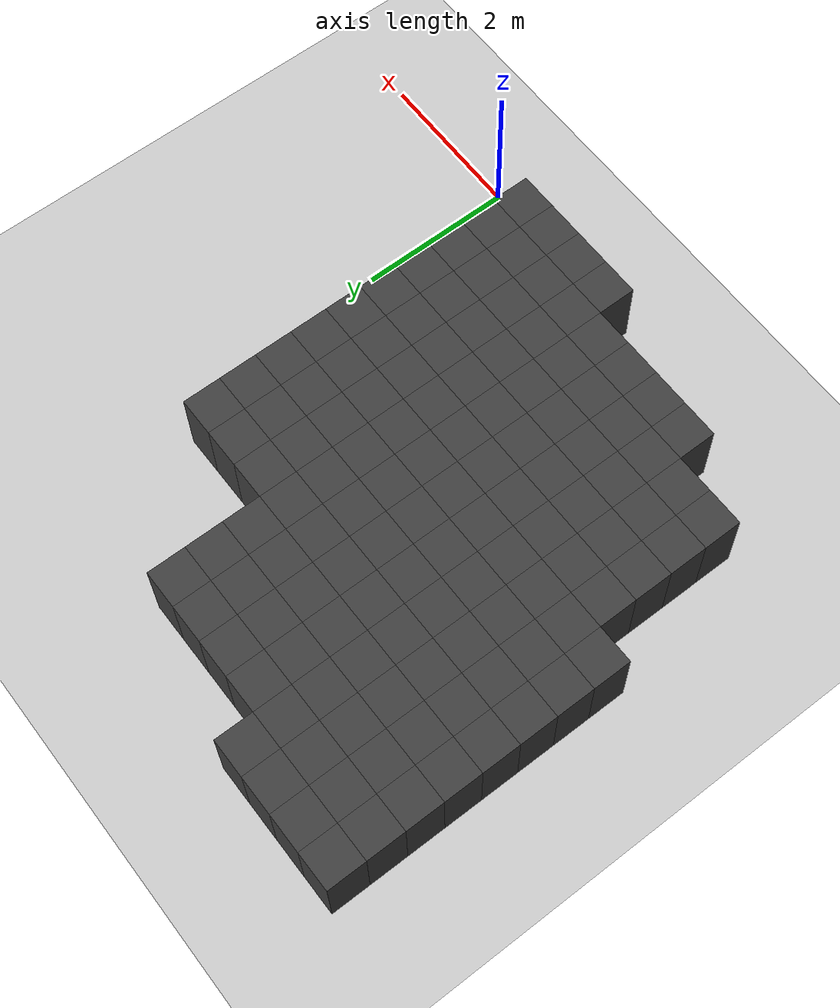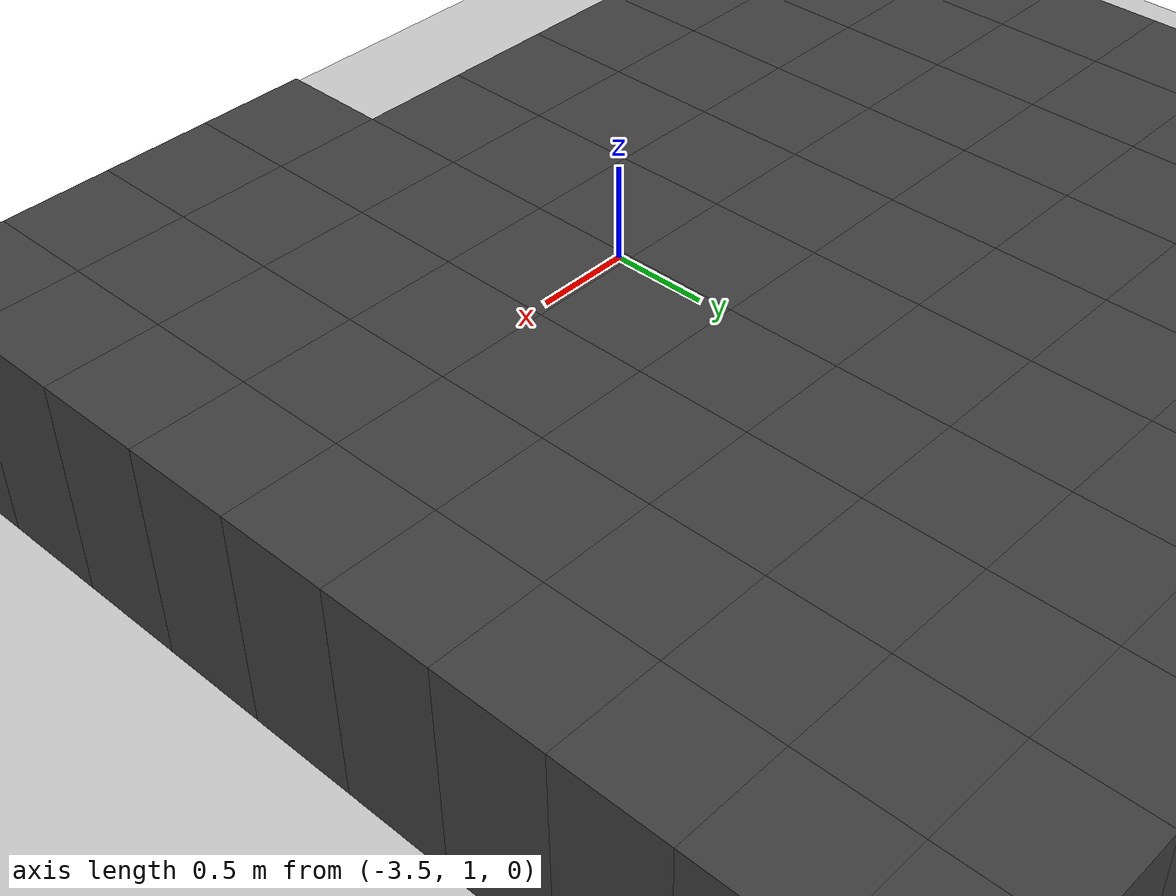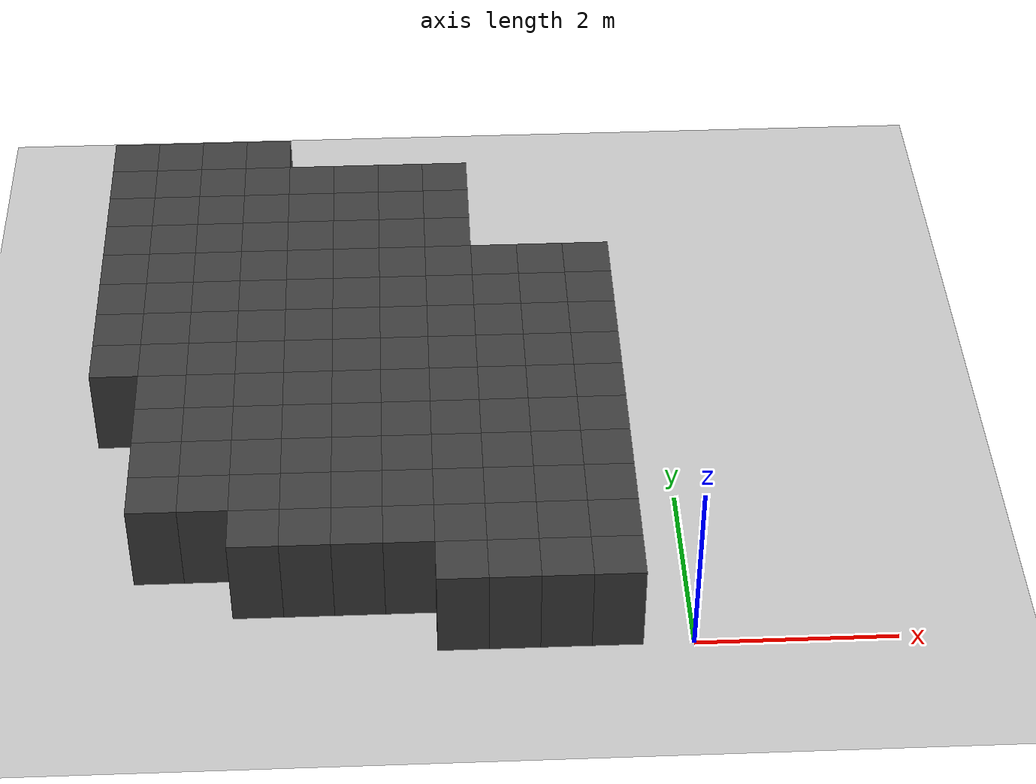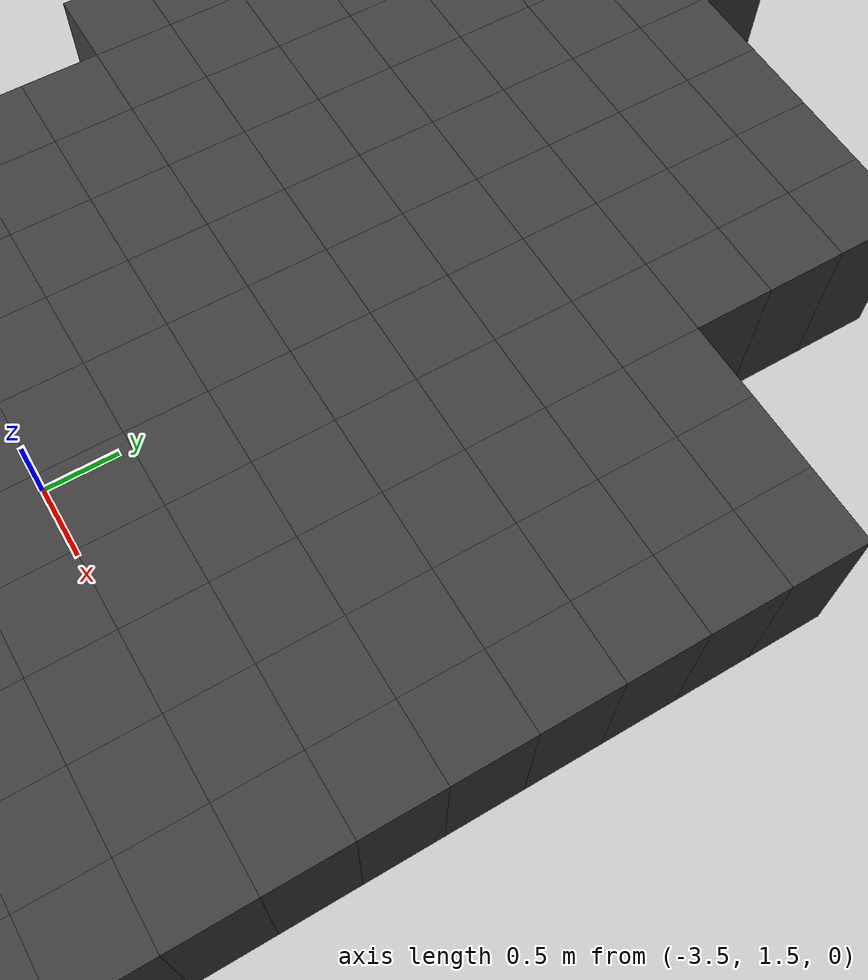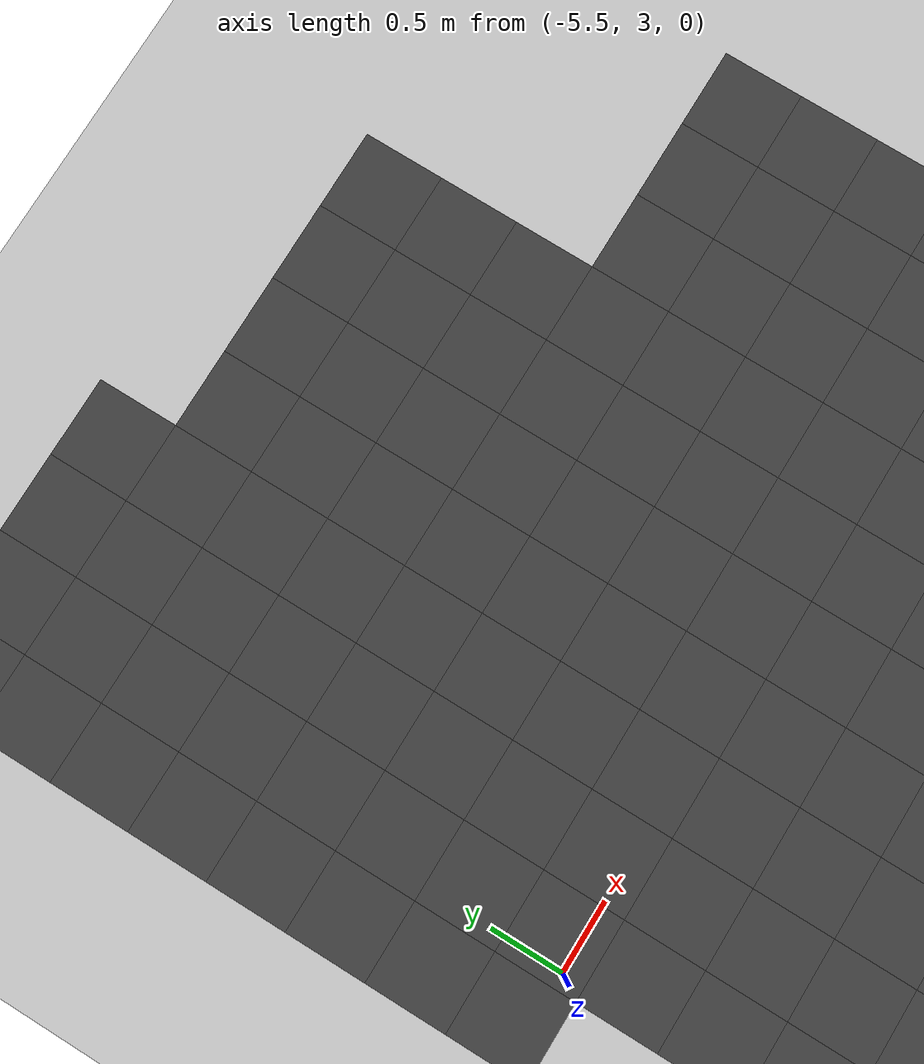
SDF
<sdf version="1.7">
 <world name="map_14074">
  <model name="ground_plane">
   <static>true</static>
   <link name="link">
    <collision name="collision">
     <geometry><plane><normal>0 0 1</normal><size>200 200</size></plane></geometry>
    </collision>
    <visual name="visual">
     <geometry><plane><normal>0 0 1</normal><size>200 200</size></plane></geometry>
     <material><ambient>0.8 0.8 0.8 1</ambient><diffuse>0.8 0.8 0.8 1</diffuse></material>
    </visual>
   </link>
  </model>
  <model name="maze_environment">
   <static>true</static>
   <link name="wall_534">
    <pose>-5.750 6.750 0.500 0 0 0</pose>
    <collision name="col"><geometry><box><size>0.5 0.5 1.0</size></box></geometry></collision>
    <visual name="vis">
     <geometry><box><size>0.5 0.5 1.0</size></box></geometry>
     <material><ambient>0.15 0.15 0.15 1</ambient><diffuse>0.25 0.25 0.25 1</diffuse></material>
    </visual>
   </link>
   <link name="wall_535">
    <pose>-5.250 6.750 0.500 0 0 0</pose>
    <collision name="col"><geometry><box><size>0.5 0.5 1.0</size></box></geometry></collision>
    <visual name="vis">
     <geometry><box><size>0.5 0.5 1.0</size></box></geometry>
     <material><ambient>0.15 0.15 0.15 1</ambient><diffuse>0.25 0.25 0.25 1</diffuse></material>
    </visual>
   </link>
   <link name="wall_536">
    <pose>-4.750 6.750 0.500 0 0 0</pose>
    <collision name="col"><geometry><box><size>0.5 0.5 1.0</size></box></geometry></collision>
    <visual name="vis">
     <geometry><box><size>0.5 0.5 1.0</size></box></geometry>
     <material><ambient>0.15 0.15 0.15 1</ambient><diffuse>0.25 0.25 0.25 1</diffuse></material>
    </visual>
   </link>
   <link name="wall_537">
    <pose>-4.250 6.750 0.500 0 0 0</pose>
    <collision name="col"><geometry><box><size>0.5 0.5 1.0</size></box></geometry></collision>
    <visual name="vis">
     <geometry><box><size>0.5 0.5 1.0</size></box></geometry>
     <material><ambient>0.15 0.15 0.15 1</ambient><diffuse>0.25 0.25 0.25 1</diffuse></material>
    </visual>
   </link>
   <link name="wall_569">
    <pose>-5.750 6.250 0.500 0 0 0</pose>
    <collision name="col"><geometry><box><size>0.5 0.5 1.0</size></box></geometry></collision>
    <visual name="vis">
     <geometry><box><size>0.5 0.5 1.0</size></box></geometry>
     <material><ambient>0.15 0.15 0.15 1</ambient><diffuse>0.25 0.25 0.25 1</diffuse></material>
    </visual>
   </link>
   <link name="wall_570">
    <pose>-5.250 6.250 0.500 0 0 0</pose>
    <collision name="col"><geometry><box><size>0.5 0.5 1.0</size></box></geometry></collision>
    <visual name="vis">
     <geometry><box><size>0.5 0.5 1.0</size></box></geometry>
     <material><ambient>0.15 0.15 0.15 1</ambient><diffuse>0.25 0.25 0.25 1</diffuse></material>
    </visual>
   </link>
   <link name="wall_571">
    <pose>-4.750 6.250 0.500 0 0 0</pose>
    <collision name="col"><geometry><box><size>0.5 0.5 1.0</size></box></geometry></collision>
    <visual name="vis">
     <geometry><box><size>0.5 0.5 1.0</size></box></geometry>
     <material><ambient>0.15 0.15 0.15 1</ambient><diffuse>0.25 0.25 0.25 1</diffuse></material>
    </visual>
   </link>
   <link name="wall_572">
    <pose>-4.250 6.250 0.500 0 0 0</pose>
    <collision name="col"><geometry><box><size>0.5 0.5 1.0</size></box></geometry></collision>
    <visual name="vis">
     <geometry><box><size>0.5 0.5 1.0</size></box></geometry>
     <material><ambient>0.15 0.15 0.15 1</ambient><diffuse>0.25 0.25 0.25 1</diffuse></material>
    </visual>
   </link>
   <link name="wall_573">
    <pose>-3.750 6.250 0.500 0 0 0</pose>
    <collision name="col"><geometry><box><size>0.5 0.5 1.0</size></box></geometry></collision>
    <visual name="vis">
     <geometry><box><size>0.5 0.5 1.0</size></box></geometry>
     <material><ambient>0.15 0.15 0.15 1</ambient><diffuse>0.25 0.25 0.25 1</diffuse></material>
    </visual>
   </link>
   <link name="wall_574">
    <pose>-3.250 6.250 0.500 0 0 0</pose>
    <collision name="col"><geometry><box><size>0.5 0.5 1.0</size></box></geometry></collision>
    <visual name="vis">
     <geometry><box><size>0.5 0.5 1.0</size></box></geometry>
     <material><ambient>0.15 0.15 0.15 1</ambient><diffuse>0.25 0.25 0.25 1</diffuse></material>
    </visual>
   </link>
   <link name="wall_575">
    <pose>-2.750 6.250 0.500 0 0 0</pose>
    <collision name="col"><geometry><box><size>0.5 0.5 1.0</size></box></geometry></collision>
    <visual name="vis">
     <geometry><box><size>0.5 0.5 1.0</size></box></geometry>
     <material><ambient>0.15 0.15 0.15 1</ambient><diffuse>0.25 0.25 0.25 1</diffuse></material>
    </visual>
   </link>
   <link name="wall_576">
    <pose>-2.250 6.250 0.500 0 0 0</pose>
    <collision name="col"><geometry><box><size>0.5 0.5 1.0</size></box></geometry></collision>
    <visual name="vis">
     <geometry><box><size>0.5 0.5 1.0</size></box></geometry>
     <material><ambient>0.15 0.15 0.15 1</ambient><diffuse>0.25 0.25 0.25 1</diffuse></material>
    </visual>
   </link>
   <link name="wall_599">
    <pose>-5.750 5.750 0.500 0 0 0</pose>
    <collision name="col"><geometry><box><size>0.5 0.5 1.0</size></box></geometry></collision>
    <visual name="vis">
     <geometry><box><size>0.5 0.5 1.0</size></box></geometry>
     <material><ambient>0.15 0.15 0.15 1</ambient><diffuse>0.25 0.25 0.25 1</diffuse></material>
    </visual>
   </link>
   <link name="wall_600">
    <pose>-5.250 5.750 0.500 0 0 0</pose>
    <collision name="col"><geometry><box><size>0.5 0.5 1.0</size></box></geometry></collision>
    <visual name="vis">
     <geometry><box><size>0.5 0.5 1.0</size></box></geometry>
     <material><ambient>0.15 0.15 0.15 1</ambient><diffuse>0.25 0.25 0.25 1</diffuse></material>
    </visual>
   </link>
   <link name="wall_601">
    <pose>-4.750 5.750 0.500 0 0 0</pose>
    <collision name="col"><geometry><box><size>0.5 0.5 1.0</size></box></geometry></collision>
    <visual name="vis">
     <geometry><box><size>0.5 0.5 1.0</size></box></geometry>
     <material><ambient>0.15 0.15 0.15 1</ambient><diffuse>0.25 0.25 0.25 1</diffuse></material>
    </visual>
   </link>
   <link name="wall_602">
    <pose>-4.250 5.750 0.500 0 0 0</pose>
    <collision name="col"><geometry><box><size>0.5 0.5 1.0</size></box></geometry></collision>
    <visual name="vis">
     <geometry><box><size>0.5 0.5 1.0</size></box></geometry>
     <material><ambient>0.15 0.15 0.15 1</ambient><diffuse>0.25 0.25 0.25 1</diffuse></material>
    </visual>
   </link>
   <link name="wall_603">
    <pose>-3.750 5.750 0.500 0 0 0</pose>
    <collision name="col"><geometry><box><size>0.5 0.5 1.0</size></box></geometry></collision>
    <visual name="vis">
     <geometry><box><size>0.5 0.5 1.0</size></box></geometry>
     <material><ambient>0.15 0.15 0.15 1</ambient><diffuse>0.25 0.25 0.25 1</diffuse></material>
    </visual>
   </link>
   <link name="wall_604">
    <pose>-3.250 5.750 0.500 0 0 0</pose>
    <collision name="col"><geometry><box><size>0.5 0.5 1.0</size></box></geometry></collision>
    <visual name="vis">
     <geometry><box><size>0.5 0.5 1.0</size></box></geometry>
     <material><ambient>0.15 0.15 0.15 1</ambient><diffuse>0.25 0.25 0.25 1</diffuse></material>
    </visual>
   </link>
   <link name="wall_605">
    <pose>-2.750 5.750 0.500 0 0 0</pose>
    <collision name="col"><geometry><box><size>0.5 0.5 1.0</size></box></geometry></collision>
    <visual name="vis">
     <geometry><box><size>0.5 0.5 1.0</size></box></geometry>
     <material><ambient>0.15 0.15 0.15 1</ambient><diffuse>0.25 0.25 0.25 1</diffuse></material>
    </visual>
   </link>
   <link name="wall_606">
    <pose>-2.250 5.750 0.500 0 0 0</pose>
    <collision name="col"><geometry><box><size>0.5 0.5 1.0</size></box></geometry></collision>
    <visual name="vis">
     <geometry><box><size>0.5 0.5 1.0</size></box></geometry>
     <material><ambient>0.15 0.15 0.15 1</ambient><diffuse>0.25 0.25 0.25 1</diffuse></material>
    </visual>
   </link>
   <link name="wall_620">
    <pose>-5.750 5.250 0.500 0 0 0</pose>
    <collision name="col"><geometry><box><size>0.5 0.5 1.0</size></box></geometry></collision>
    <visual name="vis">
     <geometry><box><size>0.5 0.5 1.0</size></box></geometry>
     <material><ambient>0.15 0.15 0.15 1</ambient><diffuse>0.25 0.25 0.25 1</diffuse></material>
    </visual>
   </link>
   <link name="wall_621">
    <pose>-5.250 5.250 0.500 0 0 0</pose>
    <collision name="col"><geometry><box><size>0.5 0.5 1.0</size></box></geometry></collision>
    <visual name="vis">
     <geometry><box><size>0.5 0.5 1.0</size></box></geometry>
     <material><ambient>0.15 0.15 0.15 1</ambient><diffuse>0.25 0.25 0.25 1</diffuse></material>
    </visual>
   </link>
   <link name="wall_622">
    <pose>-4.750 5.250 0.500 0 0 0</pose>
    <collision name="col"><geometry><box><size>0.5 0.5 1.0</size></box></geometry></collision>
    <visual name="vis">
     <geometry><box><size>0.5 0.5 1.0</size></box></geometry>
     <material><ambient>0.15 0.15 0.15 1</ambient><diffuse>0.25 0.25 0.25 1</diffuse></material>
    </visual>
   </link>
   <link name="wall_623">
    <pose>-4.250 5.250 0.500 0 0 0</pose>
    <collision name="col"><geometry><box><size>0.5 0.5 1.0</size></box></geometry></collision>
    <visual name="vis">
     <geometry><box><size>0.5 0.5 1.0</size></box></geometry>
     <material><ambient>0.15 0.15 0.15 1</ambient><diffuse>0.25 0.25 0.25 1</diffuse></material>
    </visual>
   </link>
   <link name="wall_624">
    <pose>-3.750 5.250 0.500 0 0 0</pose>
    <collision name="col"><geometry><box><size>0.5 0.5 1.0</size></box></geometry></collision>
    <visual name="vis">
     <geometry><box><size>0.5 0.5 1.0</size></box></geometry>
     <material><ambient>0.15 0.15 0.15 1</ambient><diffuse>0.25 0.25 0.25 1</diffuse></material>
    </visual>
   </link>
   <link name="wall_625">
    <pose>-3.250 5.250 0.500 0 0 0</pose>
    <collision name="col"><geometry><box><size>0.5 0.5 1.0</size></box></geometry></collision>
    <visual name="vis">
     <geometry><box><size>0.5 0.5 1.0</size></box></geometry>
     <material><ambient>0.15 0.15 0.15 1</ambient><diffuse>0.25 0.25 0.25 1</diffuse></material>
    </visual>
   </link>
   <link name="wall_626">
    <pose>-2.750 5.250 0.500 0 0 0</pose>
    <collision name="col"><geometry><box><size>0.5 0.5 1.0</size></box></geometry></collision>
    <visual name="vis">
     <geometry><box><size>0.5 0.5 1.0</size></box></geometry>
     <material><ambient>0.15 0.15 0.15 1</ambient><diffuse>0.25 0.25 0.25 1</diffuse></material>
    </visual>
   </link>
   <link name="wall_627">
    <pose>-2.250 5.250 0.500 0 0 0</pose>
    <collision name="col"><geometry><box><size>0.5 0.5 1.0</size></box></geometry></collision>
    <visual name="vis">
     <geometry><box><size>0.5 0.5 1.0</size></box></geometry>
     <material><ambient>0.15 0.15 0.15 1</ambient><diffuse>0.25 0.25 0.25 1</diffuse></material>
    </visual>
   </link>
   <link name="wall_650">
    <pose>-5.750 4.750 0.500 0 0 0</pose>
    <collision name="col"><geometry><box><size>0.5 0.5 1.0</size></box></geometry></collision>
    <visual name="vis">
     <geometry><box><size>0.5 0.5 1.0</size></box></geometry>
     <material><ambient>0.15 0.15 0.15 1</ambient><diffuse>0.25 0.25 0.25 1</diffuse></material>
    </visual>
   </link>
   <link name="wall_651">
    <pose>-5.250 4.750 0.500 0 0 0</pose>
    <collision name="col"><geometry><box><size>0.5 0.5 1.0</size></box></geometry></collision>
    <visual name="vis">
     <geometry><box><size>0.5 0.5 1.0</size></box></geometry>
     <material><ambient>0.15 0.15 0.15 1</ambient><diffuse>0.25 0.25 0.25 1</diffuse></material>
    </visual>
   </link>
   <link name="wall_652">
    <pose>-4.750 4.750 0.500 0 0 0</pose>
    <collision name="col"><geometry><box><size>0.5 0.5 1.0</size></box></geometry></collision>
    <visual name="vis">
     <geometry><box><size>0.5 0.5 1.0</size></box></geometry>
     <material><ambient>0.15 0.15 0.15 1</ambient><diffuse>0.25 0.25 0.25 1</diffuse></material>
    </visual>
   </link>
   <link name="wall_653">
    <pose>-4.250 4.750 0.500 0 0 0</pose>
    <collision name="col"><geometry><box><size>0.5 0.5 1.0</size></box></geometry></collision>
    <visual name="vis">
     <geometry><box><size>0.5 0.5 1.0</size></box></geometry>
     <material><ambient>0.15 0.15 0.15 1</ambient><diffuse>0.25 0.25 0.25 1</diffuse></material>
    </visual>
   </link>
   <link name="wall_654">
    <pose>-3.750 4.750 0.500 0 0 0</pose>
    <collision name="col"><geometry><box><size>0.5 0.5 1.0</size></box></geometry></collision>
    <visual name="vis">
     <geometry><box><size>0.5 0.5 1.0</size></box></geometry>
     <material><ambient>0.15 0.15 0.15 1</ambient><diffuse>0.25 0.25 0.25 1</diffuse></material>
    </visual>
   </link>
   <link name="wall_655">
    <pose>-3.250 4.750 0.500 0 0 0</pose>
    <collision name="col"><geometry><box><size>0.5 0.5 1.0</size></box></geometry></collision>
    <visual name="vis">
     <geometry><box><size>0.5 0.5 1.0</size></box></geometry>
     <material><ambient>0.15 0.15 0.15 1</ambient><diffuse>0.25 0.25 0.25 1</diffuse></material>
    </visual>
   </link>
   <link name="wall_656">
    <pose>-2.750 4.750 0.500 0 0 0</pose>
    <collision name="col"><geometry><box><size>0.5 0.5 1.0</size></box></geometry></collision>
    <visual name="vis">
     <geometry><box><size>0.5 0.5 1.0</size></box></geometry>
     <material><ambient>0.15 0.15 0.15 1</ambient><diffuse>0.25 0.25 0.25 1</diffuse></material>
    </visual>
   </link>
   <link name="wall_657">
    <pose>-2.250 4.750 0.500 0 0 0</pose>
    <collision name="col"><geometry><box><size>0.5 0.5 1.0</size></box></geometry></collision>
    <visual name="vis">
     <geometry><box><size>0.5 0.5 1.0</size></box></geometry>
     <material><ambient>0.15 0.15 0.15 1</ambient><diffuse>0.25 0.25 0.25 1</diffuse></material>
    </visual>
   </link>
   <link name="wall_658">
    <pose>-1.750 4.750 0.500 0 0 0</pose>
    <collision name="col"><geometry><box><size>0.5 0.5 1.0</size></box></geometry></collision>
    <visual name="vis">
     <geometry><box><size>0.5 0.5 1.0</size></box></geometry>
     <material><ambient>0.15 0.15 0.15 1</ambient><diffuse>0.25 0.25 0.25 1</diffuse></material>
    </visual>
   </link>
   <link name="wall_659">
    <pose>-1.250 4.750 0.500 0 0 0</pose>
    <collision name="col"><geometry><box><size>0.5 0.5 1.0</size></box></geometry></collision>
    <visual name="vis">
     <geometry><box><size>0.5 0.5 1.0</size></box></geometry>
     <material><ambient>0.15 0.15 0.15 1</ambient><diffuse>0.25 0.25 0.25 1</diffuse></material>
    </visual>
   </link>
   <link name="wall_660">
    <pose>-0.750 4.750 0.500 0 0 0</pose>
    <collision name="col"><geometry><box><size>0.5 0.5 1.0</size></box></geometry></collision>
    <visual name="vis">
     <geometry><box><size>0.5 0.5 1.0</size></box></geometry>
     <material><ambient>0.15 0.15 0.15 1</ambient><diffuse>0.25 0.25 0.25 1</diffuse></material>
    </visual>
   </link>
   <link name="wall_675">
    <pose>-5.750 4.250 0.500 0 0 0</pose>
    <collision name="col"><geometry><box><size>0.5 0.5 1.0</size></box></geometry></collision>
    <visual name="vis">
     <geometry><box><size>0.5 0.5 1.0</size></box></geometry>
     <material><ambient>0.15 0.15 0.15 1</ambient><diffuse>0.25 0.25 0.25 1</diffuse></material>
    </visual>
   </link>
   <link name="wall_676">
    <pose>-5.250 4.250 0.500 0 0 0</pose>
    <collision name="col"><geometry><box><size>0.5 0.5 1.0</size></box></geometry></collision>
    <visual name="vis">
     <geometry><box><size>0.5 0.5 1.0</size></box></geometry>
     <material><ambient>0.15 0.15 0.15 1</ambient><diffuse>0.25 0.25 0.25 1</diffuse></material>
    </visual>
   </link>
   <link name="wall_677">
    <pose>-4.750 4.250 0.500 0 0 0</pose>
    <collision name="col"><geometry><box><size>0.5 0.5 1.0</size></box></geometry></collision>
    <visual name="vis">
     <geometry><box><size>0.5 0.5 1.0</size></box></geometry>
     <material><ambient>0.15 0.15 0.15 1</ambient><diffuse>0.25 0.25 0.25 1</diffuse></material>
    </visual>
   </link>
   <link name="wall_678">
    <pose>-4.250 4.250 0.500 0 0 0</pose>
    <collision name="col"><geometry><box><size>0.5 0.5 1.0</size></box></geometry></collision>
    <visual name="vis">
     <geometry><box><size>0.5 0.5 1.0</size></box></geometry>
     <material><ambient>0.15 0.15 0.15 1</ambient><diffuse>0.25 0.25 0.25 1</diffuse></material>
    </visual>
   </link>
   <link name="wall_679">
    <pose>-3.750 4.250 0.500 0 0 0</pose>
    <collision name="col"><geometry><box><size>0.5 0.5 1.0</size></box></geometry></collision>
    <visual name="vis">
     <geometry><box><size>0.5 0.5 1.0</size></box></geometry>
     <material><ambient>0.15 0.15 0.15 1</ambient><diffuse>0.25 0.25 0.25 1</diffuse></material>
    </visual>
   </link>
   <link name="wall_680">
    <pose>-3.250 4.250 0.500 0 0 0</pose>
    <collision name="col"><geometry><box><size>0.5 0.5 1.0</size></box></geometry></collision>
    <visual name="vis">
     <geometry><box><size>0.5 0.5 1.0</size></box></geometry>
     <material><ambient>0.15 0.15 0.15 1</ambient><diffuse>0.25 0.25 0.25 1</diffuse></material>
    </visual>
   </link>
   <link name="wall_681">
    <pose>-2.750 4.250 0.500 0 0 0</pose>
    <collision name="col"><geometry><box><size>0.5 0.5 1.0</size></box></geometry></collision>
    <visual name="vis">
     <geometry><box><size>0.5 0.5 1.0</size></box></geometry>
     <material><ambient>0.15 0.15 0.15 1</ambient><diffuse>0.25 0.25 0.25 1</diffuse></material>
    </visual>
   </link>
   <link name="wall_682">
    <pose>-2.250 4.250 0.500 0 0 0</pose>
    <collision name="col"><geometry><box><size>0.5 0.5 1.0</size></box></geometry></collision>
    <visual name="vis">
     <geometry><box><size>0.5 0.5 1.0</size></box></geometry>
     <material><ambient>0.15 0.15 0.15 1</ambient><diffuse>0.25 0.25 0.25 1</diffuse></material>
    </visual>
   </link>
   <link name="wall_683">
    <pose>-1.750 4.250 0.500 0 0 0</pose>
    <collision name="col"><geometry><box><size>0.5 0.5 1.0</size></box></geometry></collision>
    <visual name="vis">
     <geometry><box><size>0.5 0.5 1.0</size></box></geometry>
     <material><ambient>0.15 0.15 0.15 1</ambient><diffuse>0.25 0.25 0.25 1</diffuse></material>
    </visual>
   </link>
   <link name="wall_684">
    <pose>-1.250 4.250 0.500 0 0 0</pose>
    <collision name="col"><geometry><box><size>0.5 0.5 1.0</size></box></geometry></collision>
    <visual name="vis">
     <geometry><box><size>0.5 0.5 1.0</size></box></geometry>
     <material><ambient>0.15 0.15 0.15 1</ambient><diffuse>0.25 0.25 0.25 1</diffuse></material>
    </visual>
   </link>
   <link name="wall_685">
    <pose>-0.750 4.250 0.500 0 0 0</pose>
    <collision name="col"><geometry><box><size>0.5 0.5 1.0</size></box></geometry></collision>
    <visual name="vis">
     <geometry><box><size>0.5 0.5 1.0</size></box></geometry>
     <material><ambient>0.15 0.15 0.15 1</ambient><diffuse>0.25 0.25 0.25 1</diffuse></material>
    </visual>
   </link>
   <link name="wall_700">
    <pose>-5.750 3.750 0.500 0 0 0</pose>
    <collision name="col"><geometry><box><size>0.5 0.5 1.0</size></box></geometry></collision>
    <visual name="vis">
     <geometry><box><size>0.5 0.5 1.0</size></box></geometry>
     <material><ambient>0.15 0.15 0.15 1</ambient><diffuse>0.25 0.25 0.25 1</diffuse></material>
    </visual>
   </link>
   <link name="wall_701">
    <pose>-5.250 3.750 0.500 0 0 0</pose>
    <collision name="col"><geometry><box><size>0.5 0.5 1.0</size></box></geometry></collision>
    <visual name="vis">
     <geometry><box><size>0.5 0.5 1.0</size></box></geometry>
     <material><ambient>0.15 0.15 0.15 1</ambient><diffuse>0.25 0.25 0.25 1</diffuse></material>
    </visual>
   </link>
   <link name="wall_702">
    <pose>-4.750 3.750 0.500 0 0 0</pose>
    <collision name="col"><geometry><box><size>0.5 0.5 1.0</size></box></geometry></collision>
    <visual name="vis">
     <geometry><box><size>0.5 0.5 1.0</size></box></geometry>
     <material><ambient>0.15 0.15 0.15 1</ambient><diffuse>0.25 0.25 0.25 1</diffuse></material>
    </visual>
   </link>
   <link name="wall_703">
    <pose>-4.250 3.750 0.500 0 0 0</pose>
    <collision name="col"><geometry><box><size>0.5 0.5 1.0</size></box></geometry></collision>
    <visual name="vis">
     <geometry><box><size>0.5 0.5 1.0</size></box></geometry>
     <material><ambient>0.15 0.15 0.15 1</ambient><diffuse>0.25 0.25 0.25 1</diffuse></material>
    </visual>
   </link>
   <link name="wall_704">
    <pose>-3.750 3.750 0.500 0 0 0</pose>
    <collision name="col"><geometry><box><size>0.5 0.5 1.0</size></box></geometry></collision>
    <visual name="vis">
     <geometry><box><size>0.5 0.5 1.0</size></box></geometry>
     <material><ambient>0.15 0.15 0.15 1</ambient><diffuse>0.25 0.25 0.25 1</diffuse></material>
    </visual>
   </link>
   <link name="wall_705">
    <pose>-3.250 3.750 0.500 0 0 0</pose>
    <collision name="col"><geometry><box><size>0.5 0.5 1.0</size></box></geometry></collision>
    <visual name="vis">
     <geometry><box><size>0.5 0.5 1.0</size></box></geometry>
     <material><ambient>0.15 0.15 0.15 1</ambient><diffuse>0.25 0.25 0.25 1</diffuse></material>
    </visual>
   </link>
   <link name="wall_706">
    <pose>-2.750 3.750 0.500 0 0 0</pose>
    <collision name="col"><geometry><box><size>0.5 0.5 1.0</size></box></geometry></collision>
    <visual name="vis">
     <geometry><box><size>0.5 0.5 1.0</size></box></geometry>
     <material><ambient>0.15 0.15 0.15 1</ambient><diffuse>0.25 0.25 0.25 1</diffuse></material>
    </visual>
   </link>
   <link name="wall_707">
    <pose>-2.250 3.750 0.500 0 0 0</pose>
    <collision name="col"><geometry><box><size>0.5 0.5 1.0</size></box></geometry></collision>
    <visual name="vis">
     <geometry><box><size>0.5 0.5 1.0</size></box></geometry>
     <material><ambient>0.15 0.15 0.15 1</ambient><diffuse>0.25 0.25 0.25 1</diffuse></material>
    </visual>
   </link>
   <link name="wall_708">
    <pose>-1.750 3.750 0.500 0 0 0</pose>
    <collision name="col"><geometry><box><size>0.5 0.5 1.0</size></box></geometry></collision>
    <visual name="vis">
     <geometry><box><size>0.5 0.5 1.0</size></box></geometry>
     <material><ambient>0.15 0.15 0.15 1</ambient><diffuse>0.25 0.25 0.25 1</diffuse></material>
    </visual>
   </link>
   <link name="wall_709">
    <pose>-1.250 3.750 0.500 0 0 0</pose>
    <collision name="col"><geometry><box><size>0.5 0.5 1.0</size></box></geometry></collision>
    <visual name="vis">
     <geometry><box><size>0.5 0.5 1.0</size></box></geometry>
     <material><ambient>0.15 0.15 0.15 1</ambient><diffuse>0.25 0.25 0.25 1</diffuse></material>
    </visual>
   </link>
   <link name="wall_710">
    <pose>-0.750 3.750 0.500 0 0 0</pose>
    <collision name="col"><geometry><box><size>0.5 0.5 1.0</size></box></geometry></collision>
    <visual name="vis">
     <geometry><box><size>0.5 0.5 1.0</size></box></geometry>
     <material><ambient>0.15 0.15 0.15 1</ambient><diffuse>0.25 0.25 0.25 1</diffuse></material>
    </visual>
   </link>
   <link name="wall_728">
    <pose>-5.750 3.250 0.500 0 0 0</pose>
    <collision name="col"><geometry><box><size>0.5 0.5 1.0</size></box></geometry></collision>
    <visual name="vis">
     <geometry><box><size>0.5 0.5 1.0</size></box></geometry>
     <material><ambient>0.15 0.15 0.15 1</ambient><diffuse>0.25 0.25 0.25 1</diffuse></material>
    </visual>
   </link>
   <link name="wall_729">
    <pose>-5.250 3.250 0.500 0 0 0</pose>
    <collision name="col"><geometry><box><size>0.5 0.5 1.0</size></box></geometry></collision>
    <visual name="vis">
     <geometry><box><size>0.5 0.5 1.0</size></box></geometry>
     <material><ambient>0.15 0.15 0.15 1</ambient><diffuse>0.25 0.25 0.25 1</diffuse></material>
    </visual>
   </link>
   <link name="wall_730">
    <pose>-4.750 3.250 0.500 0 0 0</pose>
    <collision name="col"><geometry><box><size>0.5 0.5 1.0</size></box></geometry></collision>
    <visual name="vis">
     <geometry><box><size>0.5 0.5 1.0</size></box></geometry>
     <material><ambient>0.15 0.15 0.15 1</ambient><diffuse>0.25 0.25 0.25 1</diffuse></material>
    </visual>
   </link>
   <link name="wall_731">
    <pose>-4.250 3.250 0.500 0 0 0</pose>
    <collision name="col"><geometry><box><size>0.5 0.5 1.0</size></box></geometry></collision>
    <visual name="vis">
     <geometry><box><size>0.5 0.5 1.0</size></box></geometry>
     <material><ambient>0.15 0.15 0.15 1</ambient><diffuse>0.25 0.25 0.25 1</diffuse></material>
    </visual>
   </link>
   <link name="wall_732">
    <pose>-3.750 3.250 0.500 0 0 0</pose>
    <collision name="col"><geometry><box><size>0.5 0.5 1.0</size></box></geometry></collision>
    <visual name="vis">
     <geometry><box><size>0.5 0.5 1.0</size></box></geometry>
     <material><ambient>0.15 0.15 0.15 1</ambient><diffuse>0.25 0.25 0.25 1</diffuse></material>
    </visual>
   </link>
   <link name="wall_733">
    <pose>-3.250 3.250 0.500 0 0 0</pose>
    <collision name="col"><geometry><box><size>0.5 0.5 1.0</size></box></geometry></collision>
    <visual name="vis">
     <geometry><box><size>0.5 0.5 1.0</size></box></geometry>
     <material><ambient>0.15 0.15 0.15 1</ambient><diffuse>0.25 0.25 0.25 1</diffuse></material>
    </visual>
   </link>
   <link name="wall_734">
    <pose>-2.750 3.250 0.500 0 0 0</pose>
    <collision name="col"><geometry><box><size>0.5 0.5 1.0</size></box></geometry></collision>
    <visual name="vis">
     <geometry><box><size>0.5 0.5 1.0</size></box></geometry>
     <material><ambient>0.15 0.15 0.15 1</ambient><diffuse>0.25 0.25 0.25 1</diffuse></material>
    </visual>
   </link>
   <link name="wall_735">
    <pose>-2.250 3.250 0.500 0 0 0</pose>
    <collision name="col"><geometry><box><size>0.5 0.5 1.0</size></box></geometry></collision>
    <visual name="vis">
     <geometry><box><size>0.5 0.5 1.0</size></box></geometry>
     <material><ambient>0.15 0.15 0.15 1</ambient><diffuse>0.25 0.25 0.25 1</diffuse></material>
    </visual>
   </link>
   <link name="wall_736">
    <pose>-1.750 3.250 0.500 0 0 0</pose>
    <collision name="col"><geometry><box><size>0.5 0.5 1.0</size></box></geometry></collision>
    <visual name="vis">
     <geometry><box><size>0.5 0.5 1.0</size></box></geometry>
     <material><ambient>0.15 0.15 0.15 1</ambient><diffuse>0.25 0.25 0.25 1</diffuse></material>
    </visual>
   </link>
   <link name="wall_737">
    <pose>-1.250 3.250 0.500 0 0 0</pose>
    <collision name="col"><geometry><box><size>0.5 0.5 1.0</size></box></geometry></collision>
    <visual name="vis">
     <geometry><box><size>0.5 0.5 1.0</size></box></geometry>
     <material><ambient>0.15 0.15 0.15 1</ambient><diffuse>0.25 0.25 0.25 1</diffuse></material>
    </visual>
   </link>
   <link name="wall_738">
    <pose>-0.750 3.250 0.500 0 0 0</pose>
    <collision name="col"><geometry><box><size>0.5 0.5 1.0</size></box></geometry></collision>
    <visual name="vis">
     <geometry><box><size>0.5 0.5 1.0</size></box></geometry>
     <material><ambient>0.15 0.15 0.15 1</ambient><diffuse>0.25 0.25 0.25 1</diffuse></material>
    </visual>
   </link>
   <link name="wall_758">
    <pose>-5.250 2.750 0.500 0 0 0</pose>
    <collision name="col"><geometry><box><size>0.5 0.5 1.0</size></box></geometry></collision>
    <visual name="vis">
     <geometry><box><size>0.5 0.5 1.0</size></box></geometry>
     <material><ambient>0.15 0.15 0.15 1</ambient><diffuse>0.25 0.25 0.25 1</diffuse></material>
    </visual>
   </link>
   <link name="wall_759">
    <pose>-4.750 2.750 0.500 0 0 0</pose>
    <collision name="col"><geometry><box><size>0.5 0.5 1.0</size></box></geometry></collision>
    <visual name="vis">
     <geometry><box><size>0.5 0.5 1.0</size></box></geometry>
     <material><ambient>0.15 0.15 0.15 1</ambient><diffuse>0.25 0.25 0.25 1</diffuse></material>
    </visual>
   </link>
   <link name="wall_760">
    <pose>-4.250 2.750 0.500 0 0 0</pose>
    <collision name="col"><geometry><box><size>0.5 0.5 1.0</size></box></geometry></collision>
    <visual name="vis">
     <geometry><box><size>0.5 0.5 1.0</size></box></geometry>
     <material><ambient>0.15 0.15 0.15 1</ambient><diffuse>0.25 0.25 0.25 1</diffuse></material>
    </visual>
   </link>
   <link name="wall_761">
    <pose>-3.750 2.750 0.500 0 0 0</pose>
    <collision name="col"><geometry><box><size>0.5 0.5 1.0</size></box></geometry></collision>
    <visual name="vis">
     <geometry><box><size>0.5 0.5 1.0</size></box></geometry>
     <material><ambient>0.15 0.15 0.15 1</ambient><diffuse>0.25 0.25 0.25 1</diffuse></material>
    </visual>
   </link>
   <link name="wall_762">
    <pose>-3.250 2.750 0.500 0 0 0</pose>
    <collision name="col"><geometry><box><size>0.5 0.5 1.0</size></box></geometry></collision>
    <visual name="vis">
     <geometry><box><size>0.5 0.5 1.0</size></box></geometry>
     <material><ambient>0.15 0.15 0.15 1</ambient><diffuse>0.25 0.25 0.25 1</diffuse></material>
    </visual>
   </link>
   <link name="wall_763">
    <pose>-2.750 2.750 0.500 0 0 0</pose>
    <collision name="col"><geometry><box><size>0.5 0.5 1.0</size></box></geometry></collision>
    <visual name="vis">
     <geometry><box><size>0.5 0.5 1.0</size></box></geometry>
     <material><ambient>0.15 0.15 0.15 1</ambient><diffuse>0.25 0.25 0.25 1</diffuse></material>
    </visual>
   </link>
   <link name="wall_764">
    <pose>-2.250 2.750 0.500 0 0 0</pose>
    <collision name="col"><geometry><box><size>0.5 0.5 1.0</size></box></geometry></collision>
    <visual name="vis">
     <geometry><box><size>0.5 0.5 1.0</size></box></geometry>
     <material><ambient>0.15 0.15 0.15 1</ambient><diffuse>0.25 0.25 0.25 1</diffuse></material>
    </visual>
   </link>
   <link name="wall_765">
    <pose>-1.750 2.750 0.500 0 0 0</pose>
    <collision name="col"><geometry><box><size>0.5 0.5 1.0</size></box></geometry></collision>
    <visual name="vis">
     <geometry><box><size>0.5 0.5 1.0</size></box></geometry>
     <material><ambient>0.15 0.15 0.15 1</ambient><diffuse>0.25 0.25 0.25 1</diffuse></material>
    </visual>
   </link>
   <link name="wall_766">
    <pose>-1.250 2.750 0.500 0 0 0</pose>
    <collision name="col"><geometry><box><size>0.5 0.5 1.0</size></box></geometry></collision>
    <visual name="vis">
     <geometry><box><size>0.5 0.5 1.0</size></box></geometry>
     <material><ambient>0.15 0.15 0.15 1</ambient><diffuse>0.25 0.25 0.25 1</diffuse></material>
    </visual>
   </link>
   <link name="wall_767">
    <pose>-0.750 2.750 0.500 0 0 0</pose>
    <collision name="col"><geometry><box><size>0.5 0.5 1.0</size></box></geometry></collision>
    <visual name="vis">
     <geometry><box><size>0.5 0.5 1.0</size></box></geometry>
     <material><ambient>0.15 0.15 0.15 1</ambient><diffuse>0.25 0.25 0.25 1</diffuse></material>
    </visual>
   </link>
   <link name="wall_799">
    <pose>-5.250 2.250 0.500 0 0 0</pose>
    <collision name="col"><geometry><box><size>0.5 0.5 1.0</size></box></geometry></collision>
    <visual name="vis">
     <geometry><box><size>0.5 0.5 1.0</size></box></geometry>
     <material><ambient>0.15 0.15 0.15 1</ambient><diffuse>0.25 0.25 0.25 1</diffuse></material>
    </visual>
   </link>
   <link name="wall_800">
    <pose>-4.750 2.250 0.500 0 0 0</pose>
    <collision name="col"><geometry><box><size>0.5 0.5 1.0</size></box></geometry></collision>
    <visual name="vis">
     <geometry><box><size>0.5 0.5 1.0</size></box></geometry>
     <material><ambient>0.15 0.15 0.15 1</ambient><diffuse>0.25 0.25 0.25 1</diffuse></material>
    </visual>
   </link>
   <link name="wall_801">
    <pose>-4.250 2.250 0.500 0 0 0</pose>
    <collision name="col"><geometry><box><size>0.5 0.5 1.0</size></box></geometry></collision>
    <visual name="vis">
     <geometry><box><size>0.5 0.5 1.0</size></box></geometry>
     <material><ambient>0.15 0.15 0.15 1</ambient><diffuse>0.25 0.25 0.25 1</diffuse></material>
    </visual>
   </link>
   <link name="wall_802">
    <pose>-3.750 2.250 0.500 0 0 0</pose>
    <collision name="col"><geometry><box><size>0.5 0.5 1.0</size></box></geometry></collision>
    <visual name="vis">
     <geometry><box><size>0.5 0.5 1.0</size></box></geometry>
     <material><ambient>0.15 0.15 0.15 1</ambient><diffuse>0.25 0.25 0.25 1</diffuse></material>
    </visual>
   </link>
   <link name="wall_803">
    <pose>-3.250 2.250 0.500 0 0 0</pose>
    <collision name="col"><geometry><box><size>0.5 0.5 1.0</size></box></geometry></collision>
    <visual name="vis">
     <geometry><box><size>0.5 0.5 1.0</size></box></geometry>
     <material><ambient>0.15 0.15 0.15 1</ambient><diffuse>0.25 0.25 0.25 1</diffuse></material>
    </visual>
   </link>
   <link name="wall_804">
    <pose>-2.750 2.250 0.500 0 0 0</pose>
    <collision name="col"><geometry><box><size>0.5 0.5 1.0</size></box></geometry></collision>
    <visual name="vis">
     <geometry><box><size>0.5 0.5 1.0</size></box></geometry>
     <material><ambient>0.15 0.15 0.15 1</ambient><diffuse>0.25 0.25 0.25 1</diffuse></material>
    </visual>
   </link>
   <link name="wall_805">
    <pose>-2.250 2.250 0.500 0 0 0</pose>
    <collision name="col"><geometry><box><size>0.5 0.5 1.0</size></box></geometry></collision>
    <visual name="vis">
     <geometry><box><size>0.5 0.5 1.0</size></box></geometry>
     <material><ambient>0.15 0.15 0.15 1</ambient><diffuse>0.25 0.25 0.25 1</diffuse></material>
    </visual>
   </link>
   <link name="wall_806">
    <pose>-1.750 2.250 0.500 0 0 0</pose>
    <collision name="col"><geometry><box><size>0.5 0.5 1.0</size></box></geometry></collision>
    <visual name="vis">
     <geometry><box><size>0.5 0.5 1.0</size></box></geometry>
     <material><ambient>0.15 0.15 0.15 1</ambient><diffuse>0.25 0.25 0.25 1</diffuse></material>
    </visual>
   </link>
   <link name="wall_807">
    <pose>-1.250 2.250 0.500 0 0 0</pose>
    <collision name="col"><geometry><box><size>0.5 0.5 1.0</size></box></geometry></collision>
    <visual name="vis">
     <geometry><box><size>0.5 0.5 1.0</size></box></geometry>
     <material><ambient>0.15 0.15 0.15 1</ambient><diffuse>0.25 0.25 0.25 1</diffuse></material>
    </visual>
   </link>
   <link name="wall_808">
    <pose>-0.750 2.250 0.500 0 0 0</pose>
    <collision name="col"><geometry><box><size>0.5 0.5 1.0</size></box></geometry></collision>
    <visual name="vis">
     <geometry><box><size>0.5 0.5 1.0</size></box></geometry>
     <material><ambient>0.15 0.15 0.15 1</ambient><diffuse>0.25 0.25 0.25 1</diffuse></material>
    </visual>
   </link>
   <link name="wall_840">
    <pose>-5.250 1.750 0.500 0 0 0</pose>
    <collision name="col"><geometry><box><size>0.5 0.5 1.0</size></box></geometry></collision>
    <visual name="vis">
     <geometry><box><size>0.5 0.5 1.0</size></box></geometry>
     <material><ambient>0.15 0.15 0.15 1</ambient><diffuse>0.25 0.25 0.25 1</diffuse></material>
    </visual>
   </link>
   <link name="wall_841">
    <pose>-4.750 1.750 0.500 0 0 0</pose>
    <collision name="col"><geometry><box><size>0.5 0.5 1.0</size></box></geometry></collision>
    <visual name="vis">
     <geometry><box><size>0.5 0.5 1.0</size></box></geometry>
     <material><ambient>0.15 0.15 0.15 1</ambient><diffuse>0.25 0.25 0.25 1</diffuse></material>
    </visual>
   </link>
   <link name="wall_842">
    <pose>-4.250 1.750 0.500 0 0 0</pose>
    <collision name="col"><geometry><box><size>0.5 0.5 1.0</size></box></geometry></collision>
    <visual name="vis">
     <geometry><box><size>0.5 0.5 1.0</size></box></geometry>
     <material><ambient>0.15 0.15 0.15 1</ambient><diffuse>0.25 0.25 0.25 1</diffuse></material>
    </visual>
   </link>
   <link name="wall_843">
    <pose>-3.750 1.750 0.500 0 0 0</pose>
    <collision name="col"><geometry><box><size>0.5 0.5 1.0</size></box></geometry></collision>
    <visual name="vis">
     <geometry><box><size>0.5 0.5 1.0</size></box></geometry>
     <material><ambient>0.15 0.15 0.15 1</ambient><diffuse>0.25 0.25 0.25 1</diffuse></material>
    </visual>
   </link>
   <link name="wall_844">
    <pose>-3.250 1.750 0.500 0 0 0</pose>
    <collision name="col"><geometry><box><size>0.5 0.5 1.0</size></box></geometry></collision>
    <visual name="vis">
     <geometry><box><size>0.5 0.5 1.0</size></box></geometry>
     <material><ambient>0.15 0.15 0.15 1</ambient><diffuse>0.25 0.25 0.25 1</diffuse></material>
    </visual>
   </link>
   <link name="wall_845">
    <pose>-2.750 1.750 0.500 0 0 0</pose>
    <collision name="col"><geometry><box><size>0.5 0.5 1.0</size></box></geometry></collision>
    <visual name="vis">
     <geometry><box><size>0.5 0.5 1.0</size></box></geometry>
     <material><ambient>0.15 0.15 0.15 1</ambient><diffuse>0.25 0.25 0.25 1</diffuse></material>
    </visual>
   </link>
   <link name="wall_846">
    <pose>-2.250 1.750 0.500 0 0 0</pose>
    <collision name="col"><geometry><box><size>0.5 0.5 1.0</size></box></geometry></collision>
    <visual name="vis">
     <geometry><box><size>0.5 0.5 1.0</size></box></geometry>
     <material><ambient>0.15 0.15 0.15 1</ambient><diffuse>0.25 0.25 0.25 1</diffuse></material>
    </visual>
   </link>
   <link name="wall_847">
    <pose>-1.750 1.750 0.500 0 0 0</pose>
    <collision name="col"><geometry><box><size>0.5 0.5 1.0</size></box></geometry></collision>
    <visual name="vis">
     <geometry><box><size>0.5 0.5 1.0</size></box></geometry>
     <material><ambient>0.15 0.15 0.15 1</ambient><diffuse>0.25 0.25 0.25 1</diffuse></material>
    </visual>
   </link>
   <link name="wall_848">
    <pose>-1.250 1.750 0.500 0 0 0</pose>
    <collision name="col"><geometry><box><size>0.5 0.5 1.0</size></box></geometry></collision>
    <visual name="vis">
     <geometry><box><size>0.5 0.5 1.0</size></box></geometry>
     <material><ambient>0.15 0.15 0.15 1</ambient><diffuse>0.25 0.25 0.25 1</diffuse></material>
    </visual>
   </link>
   <link name="wall_849">
    <pose>-0.750 1.750 0.500 0 0 0</pose>
    <collision name="col"><geometry><box><size>0.5 0.5 1.0</size></box></geometry></collision>
    <visual name="vis">
     <geometry><box><size>0.5 0.5 1.0</size></box></geometry>
     <material><ambient>0.15 0.15 0.15 1</ambient><diffuse>0.25 0.25 0.25 1</diffuse></material>
    </visual>
   </link>
   <link name="wall_881">
    <pose>-5.250 1.250 0.500 0 0 0</pose>
    <collision name="col"><geometry><box><size>0.5 0.5 1.0</size></box></geometry></collision>
    <visual name="vis">
     <geometry><box><size>0.5 0.5 1.0</size></box></geometry>
     <material><ambient>0.15 0.15 0.15 1</ambient><diffuse>0.25 0.25 0.25 1</diffuse></material>
    </visual>
   </link>
   <link name="wall_882">
    <pose>-4.750 1.250 0.500 0 0 0</pose>
    <collision name="col"><geometry><box><size>0.5 0.5 1.0</size></box></geometry></collision>
    <visual name="vis">
     <geometry><box><size>0.5 0.5 1.0</size></box></geometry>
     <material><ambient>0.15 0.15 0.15 1</ambient><diffuse>0.25 0.25 0.25 1</diffuse></material>
    </visual>
   </link>
   <link name="wall_883">
    <pose>-4.250 1.250 0.500 0 0 0</pose>
    <collision name="col"><geometry><box><size>0.5 0.5 1.0</size></box></geometry></collision>
    <visual name="vis">
     <geometry><box><size>0.5 0.5 1.0</size></box></geometry>
     <material><ambient>0.15 0.15 0.15 1</ambient><diffuse>0.25 0.25 0.25 1</diffuse></material>
    </visual>
   </link>
   <link name="wall_884">
    <pose>-3.750 1.250 0.500 0 0 0</pose>
    <collision name="col"><geometry><box><size>0.5 0.5 1.0</size></box></geometry></collision>
    <visual name="vis">
     <geometry><box><size>0.5 0.5 1.0</size></box></geometry>
     <material><ambient>0.15 0.15 0.15 1</ambient><diffuse>0.25 0.25 0.25 1</diffuse></material>
    </visual>
   </link>
   <link name="wall_885">
    <pose>-3.250 1.250 0.500 0 0 0</pose>
    <collision name="col"><geometry><box><size>0.5 0.5 1.0</size></box></geometry></collision>
    <visual name="vis">
     <geometry><box><size>0.5 0.5 1.0</size></box></geometry>
     <material><ambient>0.15 0.15 0.15 1</ambient><diffuse>0.25 0.25 0.25 1</diffuse></material>
    </visual>
   </link>
   <link name="wall_886">
    <pose>-2.750 1.250 0.500 0 0 0</pose>
    <collision name="col"><geometry><box><size>0.5 0.5 1.0</size></box></geometry></collision>
    <visual name="vis">
     <geometry><box><size>0.5 0.5 1.0</size></box></geometry>
     <material><ambient>0.15 0.15 0.15 1</ambient><diffuse>0.25 0.25 0.25 1</diffuse></material>
    </visual>
   </link>
   <link name="wall_887">
    <pose>-2.250 1.250 0.500 0 0 0</pose>
    <collision name="col"><geometry><box><size>0.5 0.5 1.0</size></box></geometry></collision>
    <visual name="vis">
     <geometry><box><size>0.5 0.5 1.0</size></box></geometry>
     <material><ambient>0.15 0.15 0.15 1</ambient><diffuse>0.25 0.25 0.25 1</diffuse></material>
    </visual>
   </link>
   <link name="wall_888">
    <pose>-1.750 1.250 0.500 0 0 0</pose>
    <collision name="col"><geometry><box><size>0.5 0.5 1.0</size></box></geometry></collision>
    <visual name="vis">
     <geometry><box><size>0.5 0.5 1.0</size></box></geometry>
     <material><ambient>0.15 0.15 0.15 1</ambient><diffuse>0.25 0.25 0.25 1</diffuse></material>
    </visual>
   </link>
   <link name="wall_889">
    <pose>-1.250 1.250 0.500 0 0 0</pose>
    <collision name="col"><geometry><box><size>0.5 0.5 1.0</size></box></geometry></collision>
    <visual name="vis">
     <geometry><box><size>0.5 0.5 1.0</size></box></geometry>
     <material><ambient>0.15 0.15 0.15 1</ambient><diffuse>0.25 0.25 0.25 1</diffuse></material>
    </visual>
   </link>
   <link name="wall_890">
    <pose>-0.750 1.250 0.500 0 0 0</pose>
    <collision name="col"><geometry><box><size>0.5 0.5 1.0</size></box></geometry></collision>
    <visual name="vis">
     <geometry><box><size>0.5 0.5 1.0</size></box></geometry>
     <material><ambient>0.15 0.15 0.15 1</ambient><diffuse>0.25 0.25 0.25 1</diffuse></material>
    </visual>
   </link>
   <link name="wall_921">
    <pose>-4.250 0.750 0.500 0 0 0</pose>
    <collision name="col"><geometry><box><size>0.5 0.5 1.0</size></box></geometry></collision>
    <visual name="vis">
     <geometry><box><size>0.5 0.5 1.0</size></box></geometry>
     <material><ambient>0.15 0.15 0.15 1</ambient><diffuse>0.25 0.25 0.25 1</diffuse></material>
    </visual>
   </link>
   <link name="wall_922">
    <pose>-3.750 0.750 0.500 0 0 0</pose>
    <collision name="col"><geometry><box><size>0.5 0.5 1.0</size></box></geometry></collision>
    <visual name="vis">
     <geometry><box><size>0.5 0.5 1.0</size></box></geometry>
     <material><ambient>0.15 0.15 0.15 1</ambient><diffuse>0.25 0.25 0.25 1</diffuse></material>
    </visual>
   </link>
   <link name="wall_923">
    <pose>-3.250 0.750 0.500 0 0 0</pose>
    <collision name="col"><geometry><box><size>0.5 0.5 1.0</size></box></geometry></collision>
    <visual name="vis">
     <geometry><box><size>0.5 0.5 1.0</size></box></geometry>
     <material><ambient>0.15 0.15 0.15 1</ambient><diffuse>0.25 0.25 0.25 1</diffuse></material>
    </visual>
   </link>
   <link name="wall_924">
    <pose>-2.750 0.750 0.500 0 0 0</pose>
    <collision name="col"><geometry><box><size>0.5 0.5 1.0</size></box></geometry></collision>
    <visual name="vis">
     <geometry><box><size>0.5 0.5 1.0</size></box></geometry>
     <material><ambient>0.15 0.15 0.15 1</ambient><diffuse>0.25 0.25 0.25 1</diffuse></material>
    </visual>
   </link>
   <link name="wall_925">
    <pose>-2.250 0.750 0.500 0 0 0</pose>
    <collision name="col"><geometry><box><size>0.5 0.5 1.0</size></box></geometry></collision>
    <visual name="vis">
     <geometry><box><size>0.5 0.5 1.0</size></box></geometry>
     <material><ambient>0.15 0.15 0.15 1</ambient><diffuse>0.25 0.25 0.25 1</diffuse></material>
    </visual>
   </link>
   <link name="wall_926">
    <pose>-1.750 0.750 0.500 0 0 0</pose>
    <collision name="col"><geometry><box><size>0.5 0.5 1.0</size></box></geometry></collision>
    <visual name="vis">
     <geometry><box><size>0.5 0.5 1.0</size></box></geometry>
     <material><ambient>0.15 0.15 0.15 1</ambient><diffuse>0.25 0.25 0.25 1</diffuse></material>
    </visual>
   </link>
   <link name="wall_927">
    <pose>-1.250 0.750 0.500 0 0 0</pose>
    <collision name="col"><geometry><box><size>0.5 0.5 1.0</size></box></geometry></collision>
    <visual name="vis">
     <geometry><box><size>0.5 0.5 1.0</size></box></geometry>
     <material><ambient>0.15 0.15 0.15 1</ambient><diffuse>0.25 0.25 0.25 1</diffuse></material>
    </visual>
   </link>
   <link name="wall_928">
    <pose>-0.750 0.750 0.500 0 0 0</pose>
    <collision name="col"><geometry><box><size>0.5 0.5 1.0</size></box></geometry></collision>
    <visual name="vis">
     <geometry><box><size>0.5 0.5 1.0</size></box></geometry>
     <material><ambient>0.15 0.15 0.15 1</ambient><diffuse>0.25 0.25 0.25 1</diffuse></material>
    </visual>
   </link>
   <link name="wall_963">
    <pose>-2.250 0.250 0.500 0 0 0</pose>
    <collision name="col"><geometry><box><size>0.5 0.5 1.0</size></box></geometry></collision>
    <visual name="vis">
     <geometry><box><size>0.5 0.5 1.0</size></box></geometry>
     <material><ambient>0.15 0.15 0.15 1</ambient><diffuse>0.25 0.25 0.25 1</diffuse></material>
    </visual>
   </link>
   <link name="wall_964">
    <pose>-1.750 0.250 0.500 0 0 0</pose>
    <collision name="col"><geometry><box><size>0.5 0.5 1.0</size></box></geometry></collision>
    <visual name="vis">
     <geometry><box><size>0.5 0.5 1.0</size></box></geometry>
     <material><ambient>0.15 0.15 0.15 1</ambient><diffuse>0.25 0.25 0.25 1</diffuse></material>
    </visual>
   </link>
   <link name="wall_965">
    <pose>-1.250 0.250 0.500 0 0 0</pose>
    <collision name="col"><geometry><box><size>0.5 0.5 1.0</size></box></geometry></collision>
    <visual name="vis">
     <geometry><box><size>0.5 0.5 1.0</size></box></geometry>
     <material><ambient>0.15 0.15 0.15 1</ambient><diffuse>0.25 0.25 0.25 1</diffuse></material>
    </visual>
   </link>
   <link name="wall_966">
    <pose>-0.750 0.250 0.500 0 0 0</pose>
    <collision name="col"><geometry><box><size>0.5 0.5 1.0</size></box></geometry></collision>
    <visual name="vis">
     <geometry><box><size>0.5 0.5 1.0</size></box></geometry>
     <material><ambient>0.15 0.15 0.15 1</ambient><diffuse>0.25 0.25 0.25 1</diffuse></material>
    </visual>
   </link>
  </model>
 </world>
</sdf>
